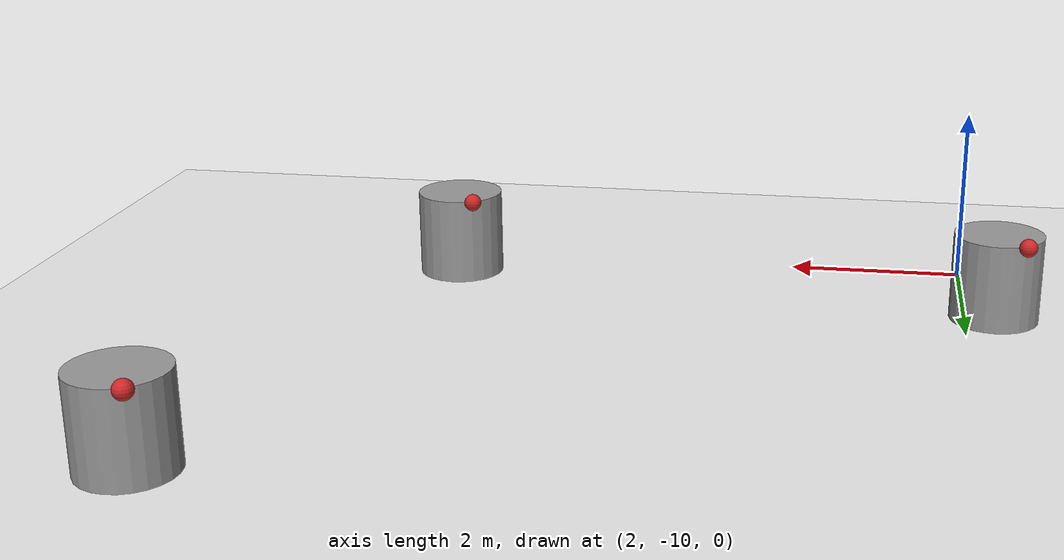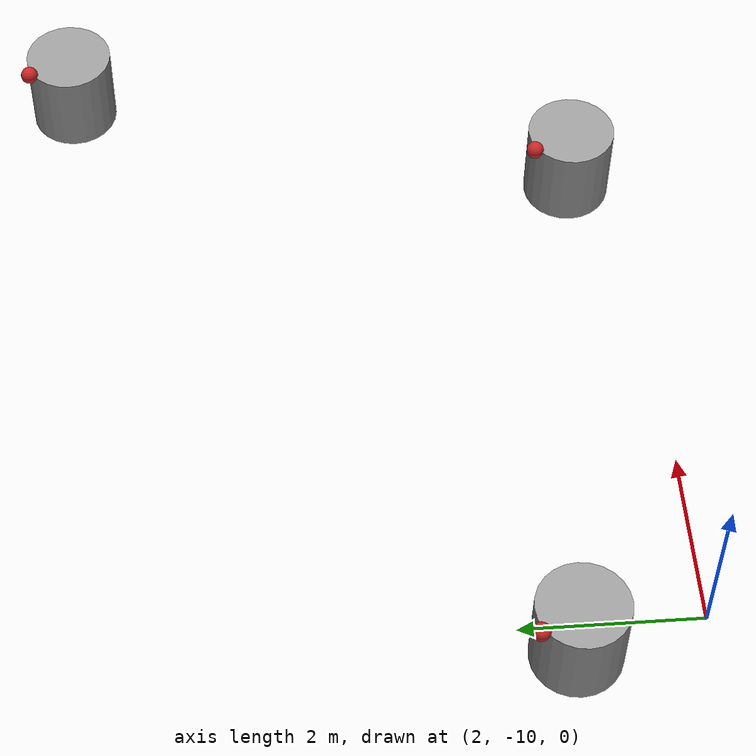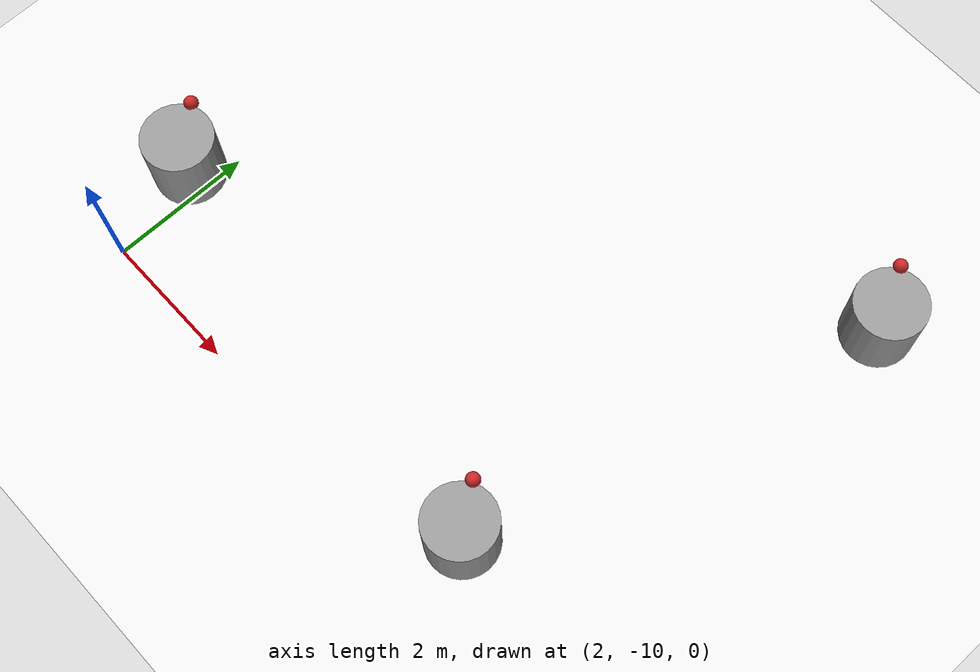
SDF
<sdf version="1.7">
 <world name="default">
  <model name="ground_plane">
   <static>1</static>
   <link name="link">
    <collision name="collision">
     <geometry><plane><normal>0 0 1</normal><size>100 100</size></plane></geometry>
     <surface>
      <contact><collide_bitmask>65535</collide_bitmask></contact>
      <friction><ode><mu>100</mu><mu2>50</mu2></ode></friction>
     </surface>
    </collision>
    <visual name="visual">
     <cast_shadows>0</cast_shadows>
     <geometry><plane><normal>0 0 1</normal><size>100 100</size></plane></geometry>
     <material>
      <script><uri>file://media/materials/scripts/gazebo.material</uri><name>Gazebo/White</name></script>
     </material>
    </visual>
   </link>
  </model>
  <model name="model5.1">
   <link name="link_1">
    <inertial>
     <mass>1</mass>
     <inertia><ixx>0.145833</ixx><ixy>0</ixy><ixz>0</ixz><iyy>0.145833</iyy><iyz>0</iyz><izz>0.125</izz></inertia>
    </inertial>
    <pose>0.135672 -0.23052 0 0 -0 0</pose>
    <visual name="visual">
     <geometry><cylinder><radius>0.5</radius><length>1</length></cylinder></geometry>
     <material>
      <lighting>1</lighting>
      <script><uri>file://media/materials/scripts/gazebo.material</uri><name>Gazebo/Grey</name></script>
      <shader type="pixel"/>
      <emissive>0 0 0 1</emissive>
     </material>
    </visual>
    <collision name="collision">
     <geometry><cylinder><radius>0.5</radius><length>1</length></cylinder></geometry>
     <surface>
      <friction>
       <ode><mu>1</mu><mu2>1</mu2><fdir1>0 0 0</fdir1><slip1>0</slip1><slip2>0</slip2></ode>
       <torsional>
        <coefficient>1</coefficient>
        <patch_radius>0</patch_radius>
        <surface_radius>0</surface_radius>
        <use_patch_radius>1</use_patch_radius>
        <ode><slip>0</slip></ode>
       </torsional>
      </friction>
      <bounce><restitution_coefficient>0</restitution_coefficient><threshold>1e+06</threshold></bounce>
      <contact>
       <collide_without_contact>0</collide_without_contact>
       <collide_without_contact_bitmask>1</collide_without_contact_bitmask>
       <collide_bitmask>1</collide_bitmask>
       <ode>
        <soft_cfm>0</soft_cfm>
        <soft_erp>0.2</soft_erp>
        <kp>1e+13</kp>
        <kd>1</kd>
        <max_vel>0.01</max_vel>
        <min_depth>0</min_depth>
       </ode>
       <bullet>
        <split_impulse>1</split_impulse>
        <split_impulse_penetration_threshold>-0.01</split_impulse_penetration_threshold>
        <soft_cfm>0</soft_cfm>
        <soft_erp>0.2</soft_erp>
        <kp>1e+13</kp>
        <kd>1</kd>
       </bullet>
      </contact>
     </surface>
    </collision>
   </link>
   <link name="link_2">
    <inertial>
     <mass>1</mass>
     <inertia><ixx>0.1</ixx><ixy>0</ixy><ixz>0</ixz><iyy>0.1</iyy><iyz>0</iyz><izz>0.1</izz></inertia>
    </inertial>
    <pose>-0.13567 0.230521 0.5 0 -0 0</pose>
    <visual name="visual">
     <geometry><sphere><radius>0.1</radius></sphere></geometry>
     <material>
      <lighting>1</lighting>
      <script><uri>file://media/materials/scripts/gazebo.material</uri><name>Gazebo/Red</name></script>
      <shader type="pixel"><normal_map>__default__</normal_map></shader>
      <ambient>0.3 0.3 0.3 1</ambient>
      <diffuse>0.7 0.7 0.7 1</diffuse>
      <specular>0.01 0.01 0.01 1</specular>
      <emissive>0 0 0 1</emissive>
     </material>
    </visual>
    <collision name="collision">
     <geometry><sphere><radius>0.1</radius></sphere></geometry>
     <surface>
      <friction>
       <ode><mu>1</mu><mu2>1</mu2><fdir1>0 0 0</fdir1><slip1>0</slip1><slip2>0</slip2></ode>
       <torsional>
        <coefficient>1</coefficient>
        <patch_radius>0</patch_radius>
        <surface_radius>0</surface_radius>
        <use_patch_radius>1</use_patch_radius>
        <ode><slip>0</slip></ode>
       </torsional>
      </friction>
      <bounce><restitution_coefficient>0</restitution_coefficient><threshold>1e+06</threshold></bounce>
      <contact>
       <collide_without_contact>0</collide_without_contact>
       <collide_without_contact_bitmask>1</collide_without_contact_bitmask>
       <collide_bitmask>1</collide_bitmask>
       <ode>
        <soft_cfm>0</soft_cfm>
        <soft_erp>0.2</soft_erp>
        <kp>1e+13</kp>
        <kd>1</kd>
        <max_vel>0.01</max_vel>
        <min_depth>0</min_depth>
       </ode>
       <bullet>
        <split_impulse>1</split_impulse>
        <split_impulse_penetration_threshold>-0.01</split_impulse_penetration_threshold>
        <soft_cfm>0</soft_cfm>
        <soft_erp>0.2</soft_erp>
        <kp>1e+13</kp>
        <kd>1</kd>
       </bullet>
      </contact>
     </surface>
    </collision>
   </link>
   <joint name="link_1_JOINT_0" type="revolute">
    <parent>link_1</parent>
    <child>link_2</child>
    <pose>0 0 0 0 0 -0.03</pose>
    <axis>
     <xyz>0 0 2</xyz>
     <limit>
      <lower>-1.79769e+308</lower>
      <upper>1.79769e+308</upper>
      <effort>-1</effort>
      <velocity>-1</velocity>
     </limit>
     <dynamics>
      <spring_reference>0</spring_reference>
      <spring_stiffness>0</spring_stiffness>
      <damping>0</damping>
     </dynamics>
    </axis>
    <physics>
     <ode><limit><cfm>0</cfm><erp>0.2</erp></limit><suspension><cfm>0</cfm><erp>0.2</erp></suspension></ode>
    </physics>
   </joint>
   <static>0</static>
   <pose>7.89939 -9.0771 0.5 0 0 -0.001657</pose>
  </model>
  <model name="model5.1_0">
   <link name="link_1">
    <inertial>
     <mass>1</mass>
     <inertia><ixx>0.145833</ixx><ixy>0</ixy><ixz>0</ixz><iyy>0.145833</iyy><iyz>0</iyz><izz>0.125</izz></inertia>
    </inertial>
    <pose>0.135672 -0.23052 0 0 -0 0</pose>
    <visual name="visual">
     <geometry><cylinder><radius>0.5</radius><length>1</length></cylinder></geometry>
     <material>
      <lighting>1</lighting>
      <script><uri>file://media/materials/scripts/gazebo.material</uri><name>Gazebo/Grey</name></script>
      <shader type="pixel"/>
      <emissive>0 0 0 1</emissive>
     </material>
    </visual>
    <collision name="collision">
     <geometry><cylinder><radius>0.5</radius><length>1</length></cylinder></geometry>
     <surface>
      <friction>
       <ode><mu>1</mu><mu2>1</mu2><fdir1>0 0 0</fdir1><slip1>0</slip1><slip2>0</slip2></ode>
       <torsional>
        <coefficient>1</coefficient>
        <patch_radius>0</patch_radius>
        <surface_radius>0</surface_radius>
        <use_patch_radius>1</use_patch_radius>
        <ode><slip>0</slip></ode>
       </torsional>
      </friction>
      <bounce><restitution_coefficient>0</restitution_coefficient><threshold>1e+06</threshold></bounce>
      <contact>
       <collide_without_contact>0</collide_without_contact>
       <collide_without_contact_bitmask>1</collide_without_contact_bitmask>
       <collide_bitmask>1</collide_bitmask>
       <ode>
        <soft_cfm>0</soft_cfm>
        <soft_erp>0.2</soft_erp>
        <kp>1e+13</kp>
        <kd>1</kd>
        <max_vel>0.01</max_vel>
        <min_depth>0</min_depth>
       </ode>
       <bullet>
        <split_impulse>1</split_impulse>
        <split_impulse_penetration_threshold>-0.01</split_impulse_penetration_threshold>
        <soft_cfm>0</soft_cfm>
        <soft_erp>0.2</soft_erp>
        <kp>1e+13</kp>
        <kd>1</kd>
       </bullet>
      </contact>
     </surface>
    </collision>
   </link>
   <link name="link_2">
    <inertial>
     <mass>1</mass>
     <inertia><ixx>0.1</ixx><ixy>0</ixy><ixz>0</ixz><iyy>0.1</iyy><iyz>0</iyz><izz>0.1</izz></inertia>
    </inertial>
    <pose>-0.13567 0.230521 0.5 0 -0 0</pose>
    <visual name="visual">
     <geometry><sphere><radius>0.1</radius></sphere></geometry>
     <material>
      <lighting>1</lighting>
      <script><uri>file://media/materials/scripts/gazebo.material</uri><name>Gazebo/Red</name></script>
      <shader type="pixel"><normal_map>__default__</normal_map></shader>
      <ambient>0.3 0.3 0.3 1</ambient>
      <diffuse>0.7 0.7 0.7 1</diffuse>
      <specular>0.01 0.01 0.01 1</specular>
      <emissive>0 0 0 1</emissive>
     </material>
    </visual>
    <collision name="collision">
     <geometry><sphere><radius>0.1</radius></sphere></geometry>
     <surface>
      <friction>
       <ode><mu>1</mu><mu2>1</mu2><fdir1>0 0 0</fdir1><slip1>0</slip1><slip2>0</slip2></ode>
       <torsional>
        <coefficient>1</coefficient>
        <patch_radius>0</patch_radius>
        <surface_radius>0</surface_radius>
        <use_patch_radius>1</use_patch_radius>
        <ode><slip>0</slip></ode>
       </torsional>
      </friction>
      <bounce><restitution_coefficient>0</restitution_coefficient><threshold>1e+06</threshold></bounce>
      <contact>
       <collide_without_contact>0</collide_without_contact>
       <collide_without_contact_bitmask>1</collide_without_contact_bitmask>
       <collide_bitmask>1</collide_bitmask>
       <ode>
        <soft_cfm>0</soft_cfm>
        <soft_erp>0.2</soft_erp>
        <kp>1e+13</kp>
        <kd>1</kd>
        <max_vel>0.01</max_vel>
        <min_depth>0</min_depth>
       </ode>
       <bullet>
        <split_impulse>1</split_impulse>
        <split_impulse_penetration_threshold>-0.01</split_impulse_penetration_threshold>
        <soft_cfm>0</soft_cfm>
        <soft_erp>0.2</soft_erp>
        <kp>1e+13</kp>
        <kd>1</kd>
       </bullet>
      </contact>
     </surface>
    </collision>
   </link>
   <joint name="link_1_JOINT_0" type="revolute">
    <parent>link_1</parent>
    <child>link_2</child>
    <pose>0 0 0 0 0 -0.03</pose>
    <axis>
     <xyz>0 0 2</xyz>
     <limit>
      <lower>-1.79769e+308</lower>
      <upper>1.79769e+308</upper>
      <effort>-1</effort>
      <velocity>-1</velocity>
     </limit>
     <dynamics>
      <spring_reference>0</spring_reference>
      <spring_stiffness>0</spring_stiffness>
      <damping>0</damping>
     </dynamics>
    </axis>
    <physics>
     <ode><limit><cfm>0</cfm><erp>0.2</erp></limit><suspension><cfm>0</cfm><erp>0.2</erp></suspension></ode>
    </physics>
   </joint>
   <static>0</static>
   <pose>9.52425 -3.20405 0.5 0 0 -0.001632</pose>
  </model>
  <model name="model5.1_8">
   <link name="link_1">
    <inertial>
     <mass>1</mass>
     <inertia><ixx>0.145833</ixx><ixy>0</ixy><ixz>0</ixz><iyy>0.145833</iyy><iyz>0</iyz><izz>0.125</izz></inertia>
    </inertial>
    <pose>0.135672 -0.23052 0 0 -0 0</pose>
    <visual name="visual">
     <geometry><cylinder><radius>0.5</radius><length>1</length></cylinder></geometry>
     <material>
      <lighting>1</lighting>
      <script><uri>file://media/materials/scripts/gazebo.material</uri><name>Gazebo/Grey</name></script>
      <shader type="pixel"/>
      <emissive>0 0 0 1</emissive>
     </material>
    </visual>
    <collision name="collision">
     <geometry><cylinder><radius>0.5</radius><length>1</length></cylinder></geometry>
     <surface>
      <friction>
       <ode><mu>1</mu><mu2>1</mu2><fdir1>0 0 0</fdir1><slip1>0</slip1><slip2>0</slip2></ode>
       <torsional>
        <coefficient>1</coefficient>
        <patch_radius>0</patch_radius>
        <surface_radius>0</surface_radius>
        <use_patch_radius>1</use_patch_radius>
        <ode><slip>0</slip></ode>
       </torsional>
      </friction>
      <bounce><restitution_coefficient>0</restitution_coefficient><threshold>1e+06</threshold></bounce>
      <contact>
       <collide_without_contact>0</collide_without_contact>
       <collide_without_contact_bitmask>1</collide_without_contact_bitmask>
       <collide_bitmask>1</collide_bitmask>
       <ode>
        <soft_cfm>0</soft_cfm>
        <soft_erp>0.2</soft_erp>
        <kp>1e+13</kp>
        <kd>1</kd>
        <max_vel>0.01</max_vel>
        <min_depth>0</min_depth>
       </ode>
       <bullet>
        <split_impulse>1</split_impulse>
        <split_impulse_penetration_threshold>-0.01</split_impulse_penetration_threshold>
        <soft_cfm>0</soft_cfm>
        <soft_erp>0.2</soft_erp>
        <kp>1e+13</kp>
        <kd>1</kd>
       </bullet>
      </contact>
     </surface>
    </collision>
   </link>
   <link name="link_2">
    <inertial>
     <mass>1</mass>
     <inertia><ixx>0.1</ixx><ixy>0</ixy><ixz>0</ixz><iyy>0.1</iyy><iyz>0</iyz><izz>0.1</izz></inertia>
    </inertial>
    <pose>-0.13567 0.230521 0.5 0 -0 0</pose>
    <visual name="visual">
     <geometry><sphere><radius>0.1</radius></sphere></geometry>
     <material>
      <lighting>1</lighting>
      <script><uri>file://media/materials/scripts/gazebo.material</uri><name>Gazebo/Red</name></script>
      <shader type="pixel"><normal_map>__default__</normal_map></shader>
      <ambient>0.3 0.3 0.3 1</ambient>
      <diffuse>0.7 0.7 0.7 1</diffuse>
      <specular>0.01 0.01 0.01 1</specular>
      <emissive>0 0 0 1</emissive>
     </material>
    </visual>
    <collision name="collision">
     <geometry><sphere><radius>0.1</radius></sphere></geometry>
     <surface>
      <friction>
       <ode><mu>1</mu><mu2>1</mu2><fdir1>0 0 0</fdir1><slip1>0</slip1><slip2>0</slip2></ode>
       <torsional>
        <coefficient>1</coefficient>
        <patch_radius>0</patch_radius>
        <surface_radius>0</surface_radius>
        <use_patch_radius>1</use_patch_radius>
        <ode><slip>0</slip></ode>
       </torsional>
      </friction>
      <bounce><restitution_coefficient>0</restitution_coefficient><threshold>1e+06</threshold></bounce>
      <contact>
       <collide_without_contact>0</collide_without_contact>
       <collide_without_contact_bitmask>1</collide_without_contact_bitmask>
       <collide_bitmask>1</collide_bitmask>
       <ode>
        <soft_cfm>0</soft_cfm>
        <soft_erp>0.2</soft_erp>
        <kp>1e+13</kp>
        <kd>1</kd>
        <max_vel>0.01</max_vel>
        <min_depth>0</min_depth>
       </ode>
       <bullet>
        <split_impulse>1</split_impulse>
        <split_impulse_penetration_threshold>-0.01</split_impulse_penetration_threshold>
        <soft_cfm>0</soft_cfm>
        <soft_erp>0.2</soft_erp>
        <kp>1e+13</kp>
        <kd>1</kd>
       </bullet>
      </contact>
     </surface>
    </collision>
   </link>
   <joint name="link_1_JOINT_0" type="revolute">
    <parent>link_1</parent>
    <child>link_2</child>
    <pose>0 0 0 0 0 -0.03</pose>
    <axis>
     <xyz>0 0 2</xyz>
     <limit>
      <lower>-1.79769e+308</lower>
      <upper>1.79769e+308</upper>
      <effort>-1</effort>
      <velocity>-1</velocity>
     </limit>
     <dynamics>
      <spring_reference>0</spring_reference>
      <spring_stiffness>0</spring_stiffness>
      <damping>0</damping>
     </dynamics>
    </axis>
    <physics>
     <ode><limit><cfm>0</cfm><erp>0.2</erp></limit><suspension><cfm>0</cfm><erp>0.2</erp></suspension></ode>
    </physics>
   </joint>
   <static>0</static>
   <pose>1.53825 -8.34795 0.5 0 0 -0.001431</pose>
  </model>
 </world>
</sdf>
